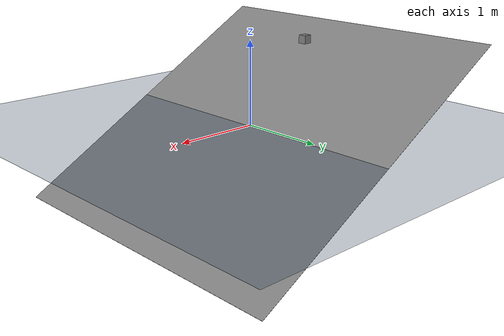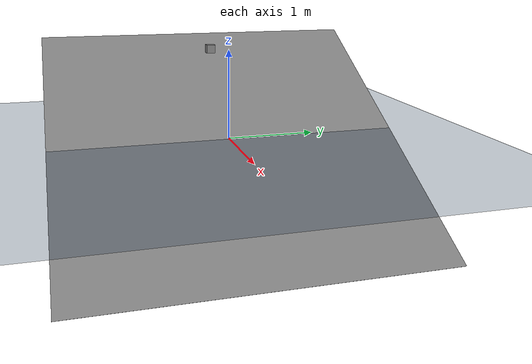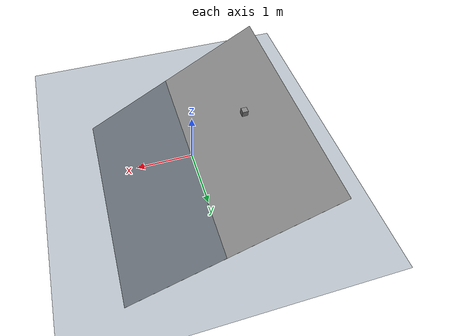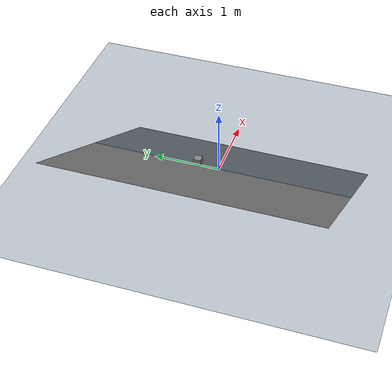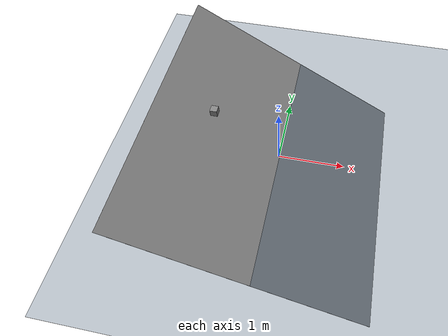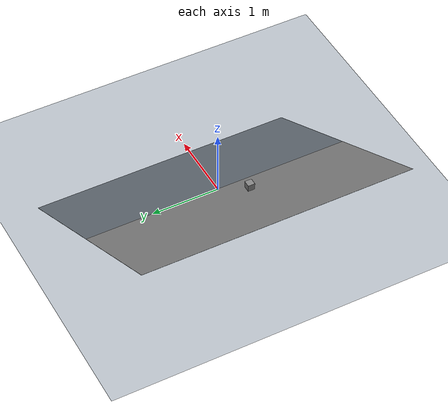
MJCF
<mujoco model="panda scene">
  <include file="friction.xml"/>

  <statistic center="0.3 0 0.4" extent="1"/>

  <visual>
    <headlight diffuse="0.6 0.6 0.6" ambient="0.3 0.3 0.3" specular="0 0 0"/>
    <rgba haze="0.15 0.25 0.35 1"/>
    <global azimuth="120" elevation="-20"/>
  </visual>

  <asset>
    <texture type="skybox" builtin="gradient" rgb1="0.3 0.5 0.7" rgb2="0 0 0" width="512" height="3072"/>
    <texture type="2d" name="groundplane" builtin="checker" mark="edge" rgb1="0.2 0.3 0.4" rgb2="0.1 0.2 0.3"
      markrgb="0.8 0.8 0.8" width="300" height="300"/>
    <material name="groundplane" texture="groundplane" texuniform="true" texrepeat="5 5" reflectance="0.2"/>
  </asset>

  <worldbody>
    <light pos="0 0 1.5" dir="0 0 -1" directional="true"/>
    <geom name="floor" size="0 0 0.05" type="plane" material="groundplane"/>
  </worldbody>
</mujoco>

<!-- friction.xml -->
<mujoco model="inclined_plane_mid">
  <compiler angle="radian" />
  <default>
    <joint damping="0.1"/>
  </default>

  <worldbody>
    <!-- 傾斜床: x軸周りに30度傾ける -->
    <body name="floor" pos="0 0 0">
      <geom type="plane" size="2 2 0.1" friction="0.1 0.005 0.0001" euler="0 0.523598 0"/>
    </body>

    <!-- 箱: 坂の途中に配置 -->
    <body name="box" pos="-0.9 0 0.9"> <!-- x=0、y=0 の位置に高さをtan(30°)*0.5で設定 -->
      <joint name="box_joint" type="free"/>
      <geom type="box" size="0.05 0.05 0.05" mass="1"/>
    </body>
  </worldbody>
</mujoco>
